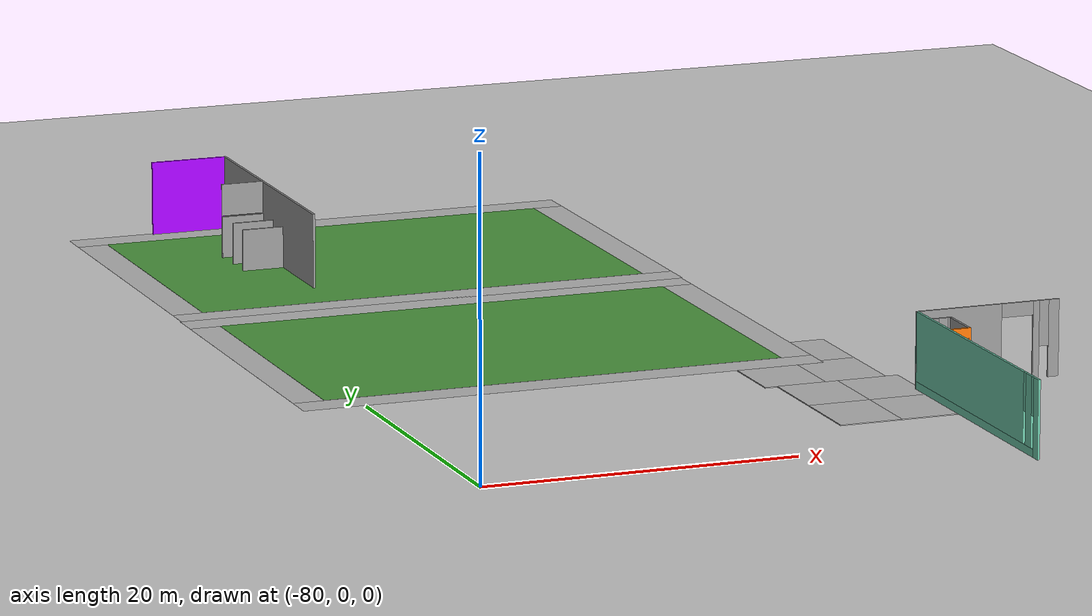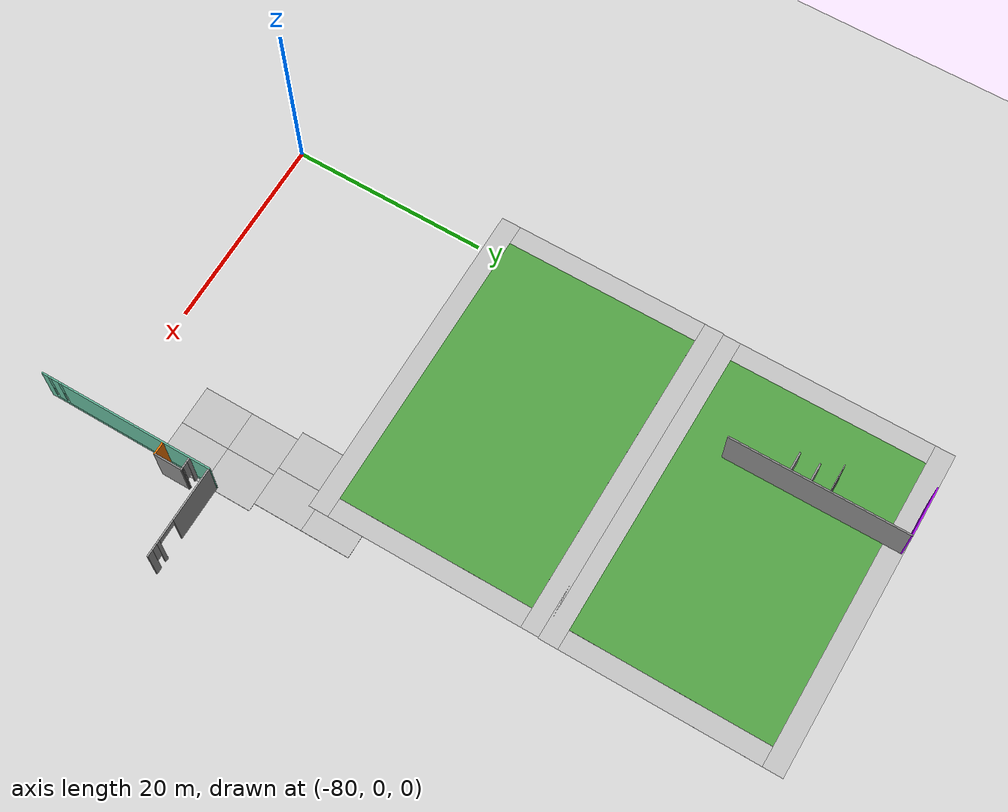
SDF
<sdf version="1.7">
 <world name="default">
  <model name="ground_plane">
   <static>1</static>
   <link name="link">
    <collision name="collision">
     <geometry><plane><normal>0 0 1</normal><size>100 100</size></plane></geometry>
     <surface><friction><ode><mu>100</mu><mu2>50</mu2></ode></friction></surface>
    </collision>
    <visual name="visual">
     <cast_shadows>0</cast_shadows>
     <geometry><plane><normal>0 0 1</normal><size>100 100</size></plane></geometry>
     <material>
      <script><uri>file://media/materials/scripts/gazebo.material</uri><name>Gazebo/Grey</name></script>
     </material>
    </visual>
   </link>
  </model>
  <model name="233333osrf_elevator">
   <link name="Wall_0">
    <pose>-7.17647 0.013004 0 0 -0 1.57174</pose>
    <visual name="Wall_0_Visual_1">
     <meta><layer>0</layer></meta>
     <pose>0.331828 0 0.25 0 -0 0</pose>
     <geometry><box><size>17.4519 0.15 0.5</size></box></geometry>
     <material>
      <script><uri>file://media/materials/scripts/gazebo.material</uri><name>Gazebo/Grey</name></script>
      <ambient>0.435294 0.796078 0.67451 1</ambient>
      <shader type="pixel"/>
     </material>
    </visual>
    <visual name="Wall_0_Visual_0">
     <meta><layer>0</layer></meta>
     <pose>-8.72596 0 2.4385 0 -0 0</pose>
     <geometry><box><size>0.663656 0.15 4.877</size></box></geometry>
     <material>
      <script><uri>file://media/materials/scripts/gazebo.material</uri><name>Gazebo/Grey</name></script>
      <ambient>0.435294 0.796078 0.67451 1</ambient>
      <shader type="pixel"/>
     </material>
    </visual>
    <visual name="Wall_0_Visual_2">
     <meta><layer>0</layer></meta>
     <pose>-7.67281 0 2.6885 0 -0 0</pose>
     <geometry><box><size>0.816657 0.15 4.377</size></box></geometry>
     <material>
      <script><uri>file://media/materials/scripts/gazebo.material</uri><name>Gazebo/Grey</name></script>
      <ambient>0.435294 0.796078 0.67451 1</ambient>
      <shader type="pixel"/>
     </material>
    </visual>
    <visual name="Wall_0_Visual_3">
     <meta><layer>0</layer></meta>
     <pose>1.05709 0 2.6885 0 -0 0</pose>
     <geometry><box><size>16.0014 0.15 4.377</size></box></geometry>
     <material>
      <script><uri>file://media/materials/scripts/gazebo.material</uri><name>Gazebo/Grey</name></script>
      <ambient>0.435294 0.796078 0.67451 1</ambient>
      <shader type="pixel"/>
     </material>
    </visual>
    <visual name="Wall_0_Visual_4">
     <meta><layer>0</layer></meta>
     <pose>-8.23763 0 3.6885 0 -0 0</pose>
     <geometry><box><size>0.313 0.15 2.377</size></box></geometry>
     <material>
      <script><uri>file://media/materials/scripts/gazebo.material</uri><name>Gazebo/Grey</name></script>
      <ambient>0.435294 0.796078 0.67451 1</ambient>
      <shader type="pixel"/>
     </material>
    </visual>
    <visual name="Wall_0_Visual_5">
     <meta><layer>0</layer></meta>
     <pose>-7.10405 0 3.6885 0 -0 0</pose>
     <geometry><box><size>0.320861 0.15 2.377</size></box></geometry>
     <material>
      <script><uri>file://media/materials/scripts/gazebo.material</uri><name>Gazebo/Grey</name></script>
      <ambient>0.435294 0.796078 0.67451 1</ambient>
      <shader type="pixel"/>
     </material>
    </visual>
    <collision name="Wall_0_Collision_0">
     <pose>-8.72596 0 2.4385 0 -0 0</pose>
     <geometry><box><size>0.663656 0.15 4.877</size></box></geometry>
     <surface>
      <friction>
       <ode><mu>1</mu><mu2>1</mu2><fdir1>0 0 0</fdir1><slip1>0</slip1><slip2>0</slip2></ode>
       <torsional>
        <coefficient>1</coefficient>
        <patch_radius>0</patch_radius>
        <surface_radius>0</surface_radius>
        <use_patch_radius>1</use_patch_radius>
        <ode><slip>0</slip></ode>
       </torsional>
      </friction>
      <bounce><restitution_coefficient>0</restitution_coefficient><threshold>1e+06</threshold></bounce>
      <contact>
       <collide_without_contact>0</collide_without_contact>
       <collide_without_contact_bitmask>1</collide_without_contact_bitmask>
       <collide_bitmask>1</collide_bitmask>
       <ode>
        <soft_cfm>0</soft_cfm>
        <soft_erp>0.2</soft_erp>
        <kp>1e+13</kp>
        <kd>1</kd>
        <max_vel>0.01</max_vel>
        <min_depth>0</min_depth>
       </ode>
       <bullet>
        <split_impulse>1</split_impulse>
        <split_impulse_penetration_threshold>-0.01</split_impulse_penetration_threshold>
        <soft_cfm>0</soft_cfm>
        <soft_erp>0.2</soft_erp>
        <kp>1e+13</kp>
        <kd>1</kd>
       </bullet>
      </contact>
     </surface>
    </collision>
    <collision name="Wall_0_Collision_5">
     <pose>-7.10405 0 3.6885 0 -0 0</pose>
     <geometry><box><size>0.320861 0.15 2.377</size></box></geometry>
     <surface>
      <friction>
       <ode><mu>1</mu><mu2>1</mu2><fdir1>0 0 0</fdir1><slip1>0</slip1><slip2>0</slip2></ode>
       <torsional>
        <coefficient>1</coefficient>
        <patch_radius>0</patch_radius>
        <surface_radius>0</surface_radius>
        <use_patch_radius>1</use_patch_radius>
        <ode><slip>0</slip></ode>
       </torsional>
      </friction>
      <bounce><restitution_coefficient>0</restitution_coefficient><threshold>1e+06</threshold></bounce>
      <contact>
       <collide_without_contact>0</collide_without_contact>
       <collide_without_contact_bitmask>1</collide_without_contact_bitmask>
       <collide_bitmask>1</collide_bitmask>
       <ode>
        <soft_cfm>0</soft_cfm>
        <soft_erp>0.2</soft_erp>
        <kp>1e+13</kp>
        <kd>1</kd>
        <max_vel>0.01</max_vel>
        <min_depth>0</min_depth>
       </ode>
       <bullet>
        <split_impulse>1</split_impulse>
        <split_impulse_penetration_threshold>-0.01</split_impulse_penetration_threshold>
        <soft_cfm>0</soft_cfm>
        <soft_erp>0.2</soft_erp>
        <kp>1e+13</kp>
        <kd>1</kd>
       </bullet>
      </contact>
     </surface>
    </collision>
    <collision name="Wall_0_Collision_1">
     <pose>0.331828 0 0.25 0 -0 0</pose>
     <geometry><box><size>17.4519 0.15 0.5</size></box></geometry>
     <surface>
      <friction>
       <ode><mu>1</mu><mu2>1</mu2><fdir1>0 0 0</fdir1><slip1>0</slip1><slip2>0</slip2></ode>
       <torsional>
        <coefficient>1</coefficient>
        <patch_radius>0</patch_radius>
        <surface_radius>0</surface_radius>
        <use_patch_radius>1</use_patch_radius>
        <ode><slip>0</slip></ode>
       </torsional>
      </friction>
      <bounce><restitution_coefficient>0</restitution_coefficient><threshold>1e+06</threshold></bounce>
      <contact>
       <collide_without_contact>0</collide_without_contact>
       <collide_without_contact_bitmask>1</collide_without_contact_bitmask>
       <collide_bitmask>1</collide_bitmask>
       <ode>
        <soft_cfm>0</soft_cfm>
        <soft_erp>0.2</soft_erp>
        <kp>1e+13</kp>
        <kd>1</kd>
        <max_vel>0.01</max_vel>
        <min_depth>0</min_depth>
       </ode>
       <bullet>
        <split_impulse>1</split_impulse>
        <split_impulse_penetration_threshold>-0.01</split_impulse_penetration_threshold>
        <soft_cfm>0</soft_cfm>
        <soft_erp>0.2</soft_erp>
        <kp>1e+13</kp>
        <kd>1</kd>
       </bullet>
      </contact>
     </surface>
    </collision>
    <collision name="Wall_0_Collision_2">
     <pose>-7.67281 0 2.6885 0 -0 0</pose>
     <geometry><box><size>0.816657 0.15 4.377</size></box></geometry>
     <surface>
      <friction>
       <ode><mu>1</mu><mu2>1</mu2><fdir1>0 0 0</fdir1><slip1>0</slip1><slip2>0</slip2></ode>
       <torsional>
        <coefficient>1</coefficient>
        <patch_radius>0</patch_radius>
        <surface_radius>0</surface_radius>
        <use_patch_radius>1</use_patch_radius>
        <ode><slip>0</slip></ode>
       </torsional>
      </friction>
      <bounce><restitution_coefficient>0</restitution_coefficient><threshold>1e+06</threshold></bounce>
      <contact>
       <collide_without_contact>0</collide_without_contact>
       <collide_without_contact_bitmask>1</collide_without_contact_bitmask>
       <collide_bitmask>1</collide_bitmask>
       <ode>
        <soft_cfm>0</soft_cfm>
        <soft_erp>0.2</soft_erp>
        <kp>1e+13</kp>
        <kd>1</kd>
        <max_vel>0.01</max_vel>
        <min_depth>0</min_depth>
       </ode>
       <bullet>
        <split_impulse>1</split_impulse>
        <split_impulse_penetration_threshold>-0.01</split_impulse_penetration_threshold>
        <soft_cfm>0</soft_cfm>
        <soft_erp>0.2</soft_erp>
        <kp>1e+13</kp>
        <kd>1</kd>
       </bullet>
      </contact>
     </surface>
    </collision>
    <collision name="Wall_0_Collision_3">
     <pose>1.05709 0 2.6885 0 -0 0</pose>
     <geometry><box><size>16.0014 0.15 4.377</size></box></geometry>
     <surface>
      <friction>
       <ode><mu>1</mu><mu2>1</mu2><fdir1>0 0 0</fdir1><slip1>0</slip1><slip2>0</slip2></ode>
       <torsional>
        <coefficient>1</coefficient>
        <patch_radius>0</patch_radius>
        <surface_radius>0</surface_radius>
        <use_patch_radius>1</use_patch_radius>
        <ode><slip>0</slip></ode>
       </torsional>
      </friction>
      <bounce><restitution_coefficient>0</restitution_coefficient><threshold>1e+06</threshold></bounce>
      <contact>
       <collide_without_contact>0</collide_without_contact>
       <collide_without_contact_bitmask>1</collide_without_contact_bitmask>
       <collide_bitmask>1</collide_bitmask>
       <ode>
        <soft_cfm>0</soft_cfm>
        <soft_erp>0.2</soft_erp>
        <kp>1e+13</kp>
        <kd>1</kd>
        <max_vel>0.01</max_vel>
        <min_depth>0</min_depth>
       </ode>
       <bullet>
        <split_impulse>1</split_impulse>
        <split_impulse_penetration_threshold>-0.01</split_impulse_penetration_threshold>
        <soft_cfm>0</soft_cfm>
        <soft_erp>0.2</soft_erp>
        <kp>1e+13</kp>
        <kd>1</kd>
       </bullet>
      </contact>
     </surface>
    </collision>
    <collision name="Wall_0_Collision_4">
     <pose>-8.23763 0 3.6885 0 -0 0</pose>
     <geometry><box><size>0.313 0.15 2.377</size></box></geometry>
     <surface>
      <friction>
       <ode><mu>1</mu><mu2>1</mu2><fdir1>0 0 0</fdir1><slip1>0</slip1><slip2>0</slip2></ode>
       <torsional>
        <coefficient>1</coefficient>
        <patch_radius>0</patch_radius>
        <surface_radius>0</surface_radius>
        <use_patch_radius>1</use_patch_radius>
        <ode><slip>0</slip></ode>
       </torsional>
      </friction>
      <bounce><restitution_coefficient>0</restitution_coefficient><threshold>1e+06</threshold></bounce>
      <contact>
       <collide_without_contact>0</collide_without_contact>
       <collide_without_contact_bitmask>1</collide_without_contact_bitmask>
       <collide_bitmask>1</collide_bitmask>
       <ode>
        <soft_cfm>0</soft_cfm>
        <soft_erp>0.2</soft_erp>
        <kp>1e+13</kp>
        <kd>1</kd>
        <max_vel>0.01</max_vel>
        <min_depth>0</min_depth>
       </ode>
       <bullet>
        <split_impulse>1</split_impulse>
        <split_impulse_penetration_threshold>-0.01</split_impulse_penetration_threshold>
        <soft_cfm>0</soft_cfm>
        <soft_erp>0.2</soft_erp>
        <kp>1e+13</kp>
        <kd>1</kd>
       </bullet>
      </contact>
     </surface>
    </collision>
   </link>
   <link name="Wall_29">
    <pose>-6.49697 4.1045 0 0 -0 0</pose>
    <visual name="Wall_29_Visual">
     <meta><layer>0</layer></meta>
     <pose>0 0 2.4385 0 -0 0</pose>
     <geometry><box><size>1.39187 0.15 4.877</size></box></geometry>
     <material>
      <script><uri>file://media/materials/scripts/gazebo.material</uri><name>Gazebo/Grey</name></script>
      <ambient>0.996078 0.47451 0.0196078 1</ambient>
      <shader type="pixel"/>
     </material>
    </visual>
    <collision name="Wall_29_Collision">
     <pose>0 0 2.4385 0 -0 0</pose>
     <geometry><box><size>1.39187 0.15 4.877</size></box></geometry>
     <surface>
      <friction>
       <ode><mu>1</mu><mu2>1</mu2><fdir1>0 0 0</fdir1><slip1>0</slip1><slip2>0</slip2></ode>
       <torsional>
        <coefficient>1</coefficient>
        <patch_radius>0</patch_radius>
        <surface_radius>0</surface_radius>
        <use_patch_radius>1</use_patch_radius>
        <ode><slip>0</slip></ode>
       </torsional>
      </friction>
      <bounce><restitution_coefficient>0</restitution_coefficient><threshold>1e+06</threshold></bounce>
      <contact>
       <collide_without_contact>0</collide_without_contact>
       <collide_without_contact_bitmask>1</collide_without_contact_bitmask>
       <collide_bitmask>1</collide_bitmask>
       <ode>
        <soft_cfm>0</soft_cfm>
        <soft_erp>0.2</soft_erp>
        <kp>1e+13</kp>
        <kd>1</kd>
        <max_vel>0.01</max_vel>
        <min_depth>0</min_depth>
       </ode>
       <bullet>
        <split_impulse>1</split_impulse>
        <split_impulse_penetration_threshold>-0.01</split_impulse_penetration_threshold>
        <soft_cfm>0</soft_cfm>
        <soft_erp>0.2</soft_erp>
        <kp>1e+13</kp>
        <kd>1</kd>
       </bullet>
      </contact>
     </surface>
    </collision>
   </link>
   <link name="Wall_30">
    <pose>-5.87597 5.5295 0 0 -0 1.5708</pose>
    <visual name="Wall_30_Visual">
     <meta><layer>0</layer></meta>
     <pose>0 0 2.4385 0 -0 0</pose>
     <geometry><box><size>3 0.15 4.877</size></box></geometry>
     <material>
      <script><uri>file://media/materials/scripts/gazebo.material</uri><name>Gazebo/Grey</name></script>
      <ambient>1 1 1 1</ambient>
      <shader type="pixel"/>
     </material>
    </visual>
    <collision name="Wall_30_Collision">
     <pose>0 0 2.4385 0 -0 0</pose>
     <geometry><box><size>3 0.15 4.877</size></box></geometry>
     <surface>
      <friction>
       <ode><mu>1</mu><mu2>1</mu2><fdir1>0 0 0</fdir1><slip1>0</slip1><slip2>0</slip2></ode>
       <torsional>
        <coefficient>1</coefficient>
        <patch_radius>0</patch_radius>
        <surface_radius>0</surface_radius>
        <use_patch_radius>1</use_patch_radius>
        <ode><slip>0</slip></ode>
       </torsional>
      </friction>
      <bounce><restitution_coefficient>0</restitution_coefficient><threshold>1e+06</threshold></bounce>
      <contact>
       <collide_without_contact>0</collide_without_contact>
       <collide_without_contact_bitmask>1</collide_without_contact_bitmask>
       <collide_bitmask>1</collide_bitmask>
       <ode>
        <soft_cfm>0</soft_cfm>
        <soft_erp>0.2</soft_erp>
        <kp>1e+13</kp>
        <kd>1</kd>
        <max_vel>0.01</max_vel>
        <min_depth>0</min_depth>
       </ode>
       <bullet>
        <split_impulse>1</split_impulse>
        <split_impulse_penetration_threshold>-0.01</split_impulse_penetration_threshold>
        <soft_cfm>0</soft_cfm>
        <soft_erp>0.2</soft_erp>
        <kp>1e+13</kp>
        <kd>1</kd>
       </bullet>
      </contact>
     </surface>
    </collision>
   </link>
   <link name="Wall_31">
    <pose>-6.50397 6.9525 0 0 0 -3.13841</pose>
    <visual name="Wall_31_Visual_0">
     <meta><layer>0</layer></meta>
     <pose>-0.567544 0 2.4385 0 -0 0</pose>
     <geometry><box><size>0.271575 0.15 4.877</size></box></geometry>
     <material>
      <script><uri>file://media/materials/scripts/gazebo.material</uri><name>Gazebo/Grey</name></script>
      <ambient>1 1 1 1</ambient>
      <shader type="pixel"/>
     </material>
    </visual>
    <visual name="Wall_31_Visual_1">
     <meta><layer>0</layer></meta>
     <pose>0.441678 0 2.4385 0 -0 0</pose>
     <geometry><box><size>0.523307 0.15 4.877</size></box></geometry>
     <material>
      <script><uri>file://media/materials/scripts/gazebo.material</uri><name>Gazebo/Grey</name></script>
      <ambient>1 1 1 1</ambient>
      <shader type="pixel"/>
     </material>
    </visual>
    <visual name="Wall_31_Visual_3">
     <meta><layer>0</layer></meta>
     <pose>-0.125866 0 3.4385 0 -0 0</pose>
     <geometry><box><size>0.611781 0.15 2.877</size></box></geometry>
     <material>
      <script><uri>file://media/materials/scripts/gazebo.material</uri><name>Gazebo/Grey</name></script>
      <ambient>1 1 1 1</ambient>
      <shader type="pixel"/>
     </material>
    </visual>
    <collision name="Wall_31_Collision_0">
     <pose>-0.567544 0 2.4385 0 -0 0</pose>
     <geometry><box><size>0.271575 0.15 4.877</size></box></geometry>
     <surface>
      <friction>
       <ode><mu>1</mu><mu2>1</mu2><fdir1>0 0 0</fdir1><slip1>0</slip1><slip2>0</slip2></ode>
       <torsional>
        <coefficient>1</coefficient>
        <patch_radius>0</patch_radius>
        <surface_radius>0</surface_radius>
        <use_patch_radius>1</use_patch_radius>
        <ode><slip>0</slip></ode>
       </torsional>
      </friction>
      <bounce><restitution_coefficient>0</restitution_coefficient><threshold>1e+06</threshold></bounce>
      <contact>
       <collide_without_contact>0</collide_without_contact>
       <collide_without_contact_bitmask>1</collide_without_contact_bitmask>
       <collide_bitmask>1</collide_bitmask>
       <ode>
        <soft_cfm>0</soft_cfm>
        <soft_erp>0.2</soft_erp>
        <kp>1e+13</kp>
        <kd>1</kd>
        <max_vel>0.01</max_vel>
        <min_depth>0</min_depth>
       </ode>
       <bullet>
        <split_impulse>1</split_impulse>
        <split_impulse_penetration_threshold>-0.01</split_impulse_penetration_threshold>
        <soft_cfm>0</soft_cfm>
        <soft_erp>0.2</soft_erp>
        <kp>1e+13</kp>
        <kd>1</kd>
       </bullet>
      </contact>
     </surface>
    </collision>
    <collision name="Wall_31_Collision_1">
     <pose>0.441678 0 2.4385 0 -0 0</pose>
     <geometry><box><size>0.523307 0.15 4.877</size></box></geometry>
     <surface>
      <friction>
       <ode><mu>1</mu><mu2>1</mu2><fdir1>0 0 0</fdir1><slip1>0</slip1><slip2>0</slip2></ode>
       <torsional>
        <coefficient>1</coefficient>
        <patch_radius>0</patch_radius>
        <surface_radius>0</surface_radius>
        <use_patch_radius>1</use_patch_radius>
        <ode><slip>0</slip></ode>
       </torsional>
      </friction>
      <bounce><restitution_coefficient>0</restitution_coefficient><threshold>1e+06</threshold></bounce>
      <contact>
       <collide_without_contact>0</collide_without_contact>
       <collide_without_contact_bitmask>1</collide_without_contact_bitmask>
       <collide_bitmask>1</collide_bitmask>
       <ode>
        <soft_cfm>0</soft_cfm>
        <soft_erp>0.2</soft_erp>
        <kp>1e+13</kp>
        <kd>1</kd>
        <max_vel>0.01</max_vel>
        <min_depth>0</min_depth>
       </ode>
       <bullet>
        <split_impulse>1</split_impulse>
        <split_impulse_penetration_threshold>-0.01</split_impulse_penetration_threshold>
        <soft_cfm>0</soft_cfm>
        <soft_erp>0.2</soft_erp>
        <kp>1e+13</kp>
        <kd>1</kd>
       </bullet>
      </contact>
     </surface>
    </collision>
    <collision name="Wall_31_Collision_3">
     <pose>-0.125866 0 3.4385 0 -0 0</pose>
     <geometry><box><size>0.611781 0.15 2.877</size></box></geometry>
     <surface>
      <friction>
       <ode><mu>1</mu><mu2>1</mu2><fdir1>0 0 0</fdir1><slip1>0</slip1><slip2>0</slip2></ode>
       <torsional>
        <coefficient>1</coefficient>
        <patch_radius>0</patch_radius>
        <surface_radius>0</surface_radius>
        <use_patch_radius>1</use_patch_radius>
        <ode><slip>0</slip></ode>
       </torsional>
      </friction>
      <bounce><restitution_coefficient>0</restitution_coefficient><threshold>1e+06</threshold></bounce>
      <contact>
       <collide_without_contact>0</collide_without_contact>
       <collide_without_contact_bitmask>1</collide_without_contact_bitmask>
       <collide_bitmask>1</collide_bitmask>
       <ode>
        <soft_cfm>0</soft_cfm>
        <soft_erp>0.2</soft_erp>
        <kp>1e+13</kp>
        <kd>1</kd>
        <max_vel>0.01</max_vel>
        <min_depth>0</min_depth>
       </ode>
       <bullet>
        <split_impulse>1</split_impulse>
        <split_impulse_penetration_threshold>-0.01</split_impulse_penetration_threshold>
        <soft_cfm>0</soft_cfm>
        <soft_erp>0.2</soft_erp>
        <kp>1e+13</kp>
        <kd>1</kd>
       </bullet>
      </contact>
     </surface>
    </collision>
   </link>
   <link name="Wall_35">
    <pose>-2.50997 8.9955 0 0 -0 0</pose>
    <visual name="Wall_35_Visual_0">
     <meta><layer>0</layer></meta>
     <pose>-1.92197 0 2.4385 0 -0 0</pose>
     <geometry><box><size>5.65606 0.15 4.877</size></box></geometry>
     <material>
      <script><uri>file://media/materials/scripts/gazebo.material</uri><name>Gazebo/Grey</name></script>
      <ambient>1 1 1 1</ambient>
      <shader type="pixel"/>
     </material>
    </visual>
    <visual name="Wall_35_Visual_1">
     <meta><layer>0</layer></meta>
     <pose>3.22541 0 2.4385 0 -0 0</pose>
     <geometry><box><size>0.406701 0.15 4.877</size></box></geometry>
     <material>
      <script><uri>file://media/materials/scripts/gazebo.material</uri><name>Gazebo/Grey</name></script>
      <ambient>1 1 1 1</ambient>
      <shader type="pixel"/>
     </material>
    </visual>
    <visual name="Wall_35_Visual_2">
     <meta><layer>0</layer></meta>
     <pose>4.40208 0 2.4385 0 -0 0</pose>
     <geometry><box><size>0.695843 0.15 4.877</size></box></geometry>
     <material>
      <script><uri>file://media/materials/scripts/gazebo.material</uri><name>Gazebo/Grey</name></script>
      <ambient>1 1 1 1</ambient>
      <shader type="pixel"/>
     </material>
    </visual>
    <visual name="Wall_35_Visual_5">
     <meta><layer>0</layer></meta>
     <pose>3.74146 0 3.4385 0 -0 0</pose>
     <geometry><box><size>0.625391 0.15 2.877</size></box></geometry>
     <material>
      <script><uri>file://media/materials/scripts/gazebo.material</uri><name>Gazebo/Grey</name></script>
      <ambient>1 1 1 1</ambient>
      <shader type="pixel"/>
     </material>
    </visual>
    <visual name="Wall_35_Visual_6">
     <meta><layer>0</layer></meta>
     <pose>1.96406 0 4.4385 0 -0 0</pose>
     <geometry><box><size>2.116 0.15 0.877</size></box></geometry>
     <material>
      <script><uri>file://media/materials/scripts/gazebo.material</uri><name>Gazebo/Grey</name></script>
      <ambient>1 1 1 1</ambient>
      <shader type="pixel"/>
     </material>
    </visual>
    <collision name="Wall_35_Collision_0">
     <pose>-1.92197 0 2.4385 0 -0 0</pose>
     <geometry><box><size>5.65606 0.15 4.877</size></box></geometry>
     <surface>
      <friction>
       <ode><mu>1</mu><mu2>1</mu2><fdir1>0 0 0</fdir1><slip1>0</slip1><slip2>0</slip2></ode>
       <torsional>
        <coefficient>1</coefficient>
        <patch_radius>0</patch_radius>
        <surface_radius>0</surface_radius>
        <use_patch_radius>1</use_patch_radius>
        <ode><slip>0</slip></ode>
       </torsional>
      </friction>
      <bounce><restitution_coefficient>0</restitution_coefficient><threshold>1e+06</threshold></bounce>
      <contact>
       <collide_without_contact>0</collide_without_contact>
       <collide_without_contact_bitmask>1</collide_without_contact_bitmask>
       <collide_bitmask>1</collide_bitmask>
       <ode>
        <soft_cfm>0</soft_cfm>
        <soft_erp>0.2</soft_erp>
        <kp>1e+13</kp>
        <kd>1</kd>
        <max_vel>0.01</max_vel>
        <min_depth>0</min_depth>
       </ode>
       <bullet>
        <split_impulse>1</split_impulse>
        <split_impulse_penetration_threshold>-0.01</split_impulse_penetration_threshold>
        <soft_cfm>0</soft_cfm>
        <soft_erp>0.2</soft_erp>
        <kp>1e+13</kp>
        <kd>1</kd>
       </bullet>
      </contact>
     </surface>
    </collision>
    <collision name="Wall_35_Collision_1">
     <pose>3.22541 0 2.4385 0 -0 0</pose>
     <geometry><box><size>0.406701 0.15 4.877</size></box></geometry>
     <surface>
      <friction>
       <ode><mu>1</mu><mu2>1</mu2><fdir1>0 0 0</fdir1><slip1>0</slip1><slip2>0</slip2></ode>
       <torsional>
        <coefficient>1</coefficient>
        <patch_radius>0</patch_radius>
        <surface_radius>0</surface_radius>
        <use_patch_radius>1</use_patch_radius>
        <ode><slip>0</slip></ode>
       </torsional>
      </friction>
      <bounce><restitution_coefficient>0</restitution_coefficient><threshold>1e+06</threshold></bounce>
      <contact>
       <collide_without_contact>0</collide_without_contact>
       <collide_without_contact_bitmask>1</collide_without_contact_bitmask>
       <collide_bitmask>1</collide_bitmask>
       <ode>
        <soft_cfm>0</soft_cfm>
        <soft_erp>0.2</soft_erp>
        <kp>1e+13</kp>
        <kd>1</kd>
        <max_vel>0.01</max_vel>
        <min_depth>0</min_depth>
       </ode>
       <bullet>
        <split_impulse>1</split_impulse>
        <split_impulse_penetration_threshold>-0.01</split_impulse_penetration_threshold>
        <soft_cfm>0</soft_cfm>
        <soft_erp>0.2</soft_erp>
        <kp>1e+13</kp>
        <kd>1</kd>
       </bullet>
      </contact>
     </surface>
    </collision>
    <collision name="Wall_35_Collision_2">
     <pose>4.40208 0 2.4385 0 -0 0</pose>
     <geometry><box><size>0.695843 0.15 4.877</size></box></geometry>
     <surface>
      <friction>
       <ode><mu>1</mu><mu2>1</mu2><fdir1>0 0 0</fdir1><slip1>0</slip1><slip2>0</slip2></ode>
       <torsional>
        <coefficient>1</coefficient>
        <patch_radius>0</patch_radius>
        <surface_radius>0</surface_radius>
        <use_patch_radius>1</use_patch_radius>
        <ode><slip>0</slip></ode>
       </torsional>
      </friction>
      <bounce><restitution_coefficient>0</restitution_coefficient><threshold>1e+06</threshold></bounce>
      <contact>
       <collide_without_contact>0</collide_without_contact>
       <collide_without_contact_bitmask>1</collide_without_contact_bitmask>
       <collide_bitmask>1</collide_bitmask>
       <ode>
        <soft_cfm>0</soft_cfm>
        <soft_erp>0.2</soft_erp>
        <kp>1e+13</kp>
        <kd>1</kd>
        <max_vel>0.01</max_vel>
        <min_depth>0</min_depth>
       </ode>
       <bullet>
        <split_impulse>1</split_impulse>
        <split_impulse_penetration_threshold>-0.01</split_impulse_penetration_threshold>
        <soft_cfm>0</soft_cfm>
        <soft_erp>0.2</soft_erp>
        <kp>1e+13</kp>
        <kd>1</kd>
       </bullet>
      </contact>
     </surface>
    </collision>
    <collision name="Wall_35_Collision_5">
     <pose>3.74146 0 3.4385 0 -0 0</pose>
     <geometry><box><size>0.625391 0.15 2.877</size></box></geometry>
     <surface>
      <friction>
       <ode><mu>1</mu><mu2>1</mu2><fdir1>0 0 0</fdir1><slip1>0</slip1><slip2>0</slip2></ode>
       <torsional>
        <coefficient>1</coefficient>
        <patch_radius>0</patch_radius>
        <surface_radius>0</surface_radius>
        <use_patch_radius>1</use_patch_radius>
        <ode><slip>0</slip></ode>
       </torsional>
      </friction>
      <bounce><restitution_coefficient>0</restitution_coefficient><threshold>1e+06</threshold></bounce>
      <contact>
       <collide_without_contact>0</collide_without_contact>
       <collide_without_contact_bitmask>1</collide_without_contact_bitmask>
       <collide_bitmask>1</collide_bitmask>
       <ode>
        <soft_cfm>0</soft_cfm>
        <soft_erp>0.2</soft_erp>
        <kp>1e+13</kp>
        <kd>1</kd>
        <max_vel>0.01</max_vel>
        <min_depth>0</min_depth>
       </ode>
       <bullet>
        <split_impulse>1</split_impulse>
        <split_impulse_penetration_threshold>-0.01</split_impulse_penetration_threshold>
        <soft_cfm>0</soft_cfm>
        <soft_erp>0.2</soft_erp>
        <kp>1e+13</kp>
        <kd>1</kd>
       </bullet>
      </contact>
     </surface>
    </collision>
    <collision name="Wall_35_Collision_6">
     <pose>1.96406 0 4.4385 0 -0 0</pose>
     <geometry><box><size>2.116 0.15 0.877</size></box></geometry>
     <surface>
      <friction>
       <ode><mu>1</mu><mu2>1</mu2><fdir1>0 0 0</fdir1><slip1>0</slip1><slip2>0</slip2></ode>
       <torsional>
        <coefficient>1</coefficient>
        <patch_radius>0</patch_radius>
        <surface_radius>0</surface_radius>
        <use_patch_radius>1</use_patch_radius>
        <ode><slip>0</slip></ode>
       </torsional>
      </friction>
      <bounce><restitution_coefficient>0</restitution_coefficient><threshold>1e+06</threshold></bounce>
      <contact>
       <collide_without_contact>0</collide_without_contact>
       <collide_without_contact_bitmask>1</collide_without_contact_bitmask>
       <collide_bitmask>1</collide_bitmask>
       <ode>
        <soft_cfm>0</soft_cfm>
        <soft_erp>0.2</soft_erp>
        <kp>1e+13</kp>
        <kd>1</kd>
        <max_vel>0.01</max_vel>
        <min_depth>0</min_depth>
       </ode>
       <bullet>
        <split_impulse>1</split_impulse>
        <split_impulse_penetration_threshold>-0.01</split_impulse_penetration_threshold>
        <soft_cfm>0</soft_cfm>
        <soft_erp>0.2</soft_erp>
        <kp>1e+13</kp>
        <kd>1</kd>
       </bullet>
      </contact>
     </surface>
    </collision>
   </link>
   <static>1</static>
   <pose>-39.9417 3.24072 0 0 -0 0</pose>
  </model>
  <model name="mud_box1111_1">
   <link name="link">
    <pose>0 0 -0.129582 0 -0 0</pose>
    <visual name="visual_1">
     <pose>-2 2.5 0 0 -0 0</pose>
     <cast_shadows>0</cast_shadows>
     <geometry><box><size>4 5 0.2</size></box></geometry>
     <material>
      <script>
       <uri>model://mud_box/materials/scripts</uri>
       <uri>model://mud_box/materials/textures</uri>
       <name>vrc/mud</name>
      </script>
      <shader type="pixel"/>
     </material>
    </visual>
    <visual name="visual_4">
     <pose>-2 -2.5 0 0 -0 0</pose>
     <cast_shadows>0</cast_shadows>
     <geometry><box><size>4 5 0.2</size></box></geometry>
     <material>
      <script>
       <uri>model://mud_box/materials/scripts</uri>
       <uri>model://mud_box/materials/textures</uri>
       <name>vrc/mud</name>
      </script>
      <shader type="pixel"/>
     </material>
    </visual>
    <visual name="visual_3">
     <pose>2 -2.5 0 0 -0 0</pose>
     <cast_shadows>0</cast_shadows>
     <geometry><box><size>4 5 0.2</size></box></geometry>
     <material>
      <script>
       <uri>model://mud_box/materials/scripts</uri>
       <uri>model://mud_box/materials/textures</uri>
       <name>vrc/mud</name>
      </script>
      <shader type="pixel"/>
     </material>
    </visual>
    <visual name="visual_2">
     <pose>2 2.5 0 0 -0 0</pose>
     <cast_shadows>0</cast_shadows>
     <geometry><box><size>4 5 0.2</size></box></geometry>
     <material>
      <script>
       <uri>model://mud_box/materials/scripts</uri>
       <uri>model://mud_box/materials/textures</uri>
       <name>vrc/mud</name>
      </script>
      <shader type="pixel"/>
     </material>
    </visual>
    <collision name="collision">
     <geometry><box><size>8 10 0.2</size></box></geometry>
     <surface>
      <friction>
       <ode><mu>1</mu><mu2>1</mu2><fdir1>0 0 0</fdir1><slip1>0</slip1><slip2>0</slip2></ode>
       <torsional>
        <coefficient>1</coefficient>
        <patch_radius>0</patch_radius>
        <surface_radius>0</surface_radius>
        <use_patch_radius>1</use_patch_radius>
        <ode><slip>0</slip></ode>
       </torsional>
      </friction>
      <bounce><restitution_coefficient>0</restitution_coefficient><threshold>1e+06</threshold></bounce>
      <contact>
       <collide_without_contact>0</collide_without_contact>
       <collide_without_contact_bitmask>1</collide_without_contact_bitmask>
       <collide_bitmask>1</collide_bitmask>
       <ode>
        <soft_cfm>0</soft_cfm>
        <soft_erp>0.2</soft_erp>
        <kp>1e+13</kp>
        <kd>1</kd>
        <max_vel>0.01</max_vel>
        <min_depth>0</min_depth>
       </ode>
       <bullet>
        <split_impulse>1</split_impulse>
        <split_impulse_penetration_threshold>-0.01</split_impulse_penetration_threshold>
        <soft_cfm>0</soft_cfm>
        <soft_erp>0.2</soft_erp>
        <kp>1e+13</kp>
        <kd>1</kd>
       </bullet>
      </contact>
     </surface>
    </collision>
   </link>
   <static>1</static>
   <pose>-50.7871 10.9659 0 0 -0 0</pose>
  </model>
  <model name="mud_box1111_2">
   <link name="link">
    <pose>0 0 -0.129582 0 -0 0</pose>
    <visual name="visual_1">
     <pose>-2 2.5 0 0 -0 0</pose>
     <cast_shadows>0</cast_shadows>
     <geometry><box><size>4 5 0.2</size></box></geometry>
     <material>
      <script>
       <uri>model://mud_box/materials/scripts</uri>
       <uri>model://mud_box/materials/textures</uri>
       <name>vrc/mud</name>
      </script>
      <shader type="pixel"/>
     </material>
    </visual>
    <visual name="visual_4">
     <pose>-2 -2.5 0 0 -0 0</pose>
     <cast_shadows>0</cast_shadows>
     <geometry><box><size>4 5 0.2</size></box></geometry>
     <material>
      <script>
       <uri>model://mud_box/materials/scripts</uri>
       <uri>model://mud_box/materials/textures</uri>
       <name>vrc/mud</name>
      </script>
      <shader type="pixel"/>
     </material>
    </visual>
    <visual name="visual_3">
     <pose>2 -2.5 0 0 -0 0</pose>
     <cast_shadows>0</cast_shadows>
     <geometry><box><size>4 5 0.2</size></box></geometry>
     <material>
      <script>
       <uri>model://mud_box/materials/scripts</uri>
       <uri>model://mud_box/materials/textures</uri>
       <name>vrc/mud</name>
      </script>
      <shader type="pixel"/>
     </material>
    </visual>
    <visual name="visual_2">
     <pose>2 2.5 0 0 -0 0</pose>
     <cast_shadows>0</cast_shadows>
     <geometry><box><size>4 5 0.2</size></box></geometry>
     <material>
      <script>
       <uri>model://mud_box/materials/scripts</uri>
       <uri>model://mud_box/materials/textures</uri>
       <name>vrc/mud</name>
      </script>
      <shader type="pixel"/>
     </material>
    </visual>
    <collision name="collision">
     <geometry><box><size>8 10 0.2</size></box></geometry>
     <surface>
      <friction>
       <ode><mu>1</mu><mu2>1</mu2><fdir1>0 0 0</fdir1><slip1>0</slip1><slip2>0</slip2></ode>
       <torsional>
        <coefficient>1</coefficient>
        <patch_radius>0</patch_radius>
        <surface_radius>0</surface_radius>
        <use_patch_radius>1</use_patch_radius>
        <ode><slip>0</slip></ode>
       </torsional>
      </friction>
      <bounce><restitution_coefficient>0</restitution_coefficient><threshold>1e+06</threshold></bounce>
      <contact>
       <collide_without_contact>0</collide_without_contact>
       <collide_without_contact_bitmask>1</collide_without_contact_bitmask>
       <collide_bitmask>1</collide_bitmask>
       <ode>
        <soft_cfm>0</soft_cfm>
        <soft_erp>0.2</soft_erp>
        <kp>1e+13</kp>
        <kd>1</kd>
        <max_vel>0.01</max_vel>
        <min_depth>0</min_depth>
       </ode>
       <bullet>
        <split_impulse>1</split_impulse>
        <split_impulse_penetration_threshold>-0.01</split_impulse_penetration_threshold>
        <soft_cfm>0</soft_cfm>
        <soft_erp>0.2</soft_erp>
        <kp>1e+13</kp>
        <kd>1</kd>
       </bullet>
      </contact>
     </surface>
    </collision>
   </link>
   <static>1</static>
   <pose>-51.5871 20.9602 0 0 -0 0</pose>
  </model>
  <model name="robocup_3d_field">
   <static>1</static>
   <link name="field">
    <pose>0 0 0.01 0 -0 0</pose>
    <collision name="collision">
     <geometry><plane><normal>0 0 1</normal><size>30 20</size></plane></geometry>
     <surface><friction><ode><mu>100</mu><mu2>50</mu2></ode></friction></surface>
    </collision>
    <visual name="base1">
     <pose>0 11 0.001 0 -0 0</pose>
     <cast_shadows>0</cast_shadows>
     <geometry><plane><normal>0 0 1</normal><size>34 2</size></plane></geometry>
     <material>
      <script>
       <uri>model://robocup_3Dsim_field/materials/scripts/</uri>
       <uri>model://robocup_3Dsim_field/materials/textures/</uri>
       <name>RoboCup/FieldBorder</name>
      </script>
     </material>
    </visual>
    <visual name="base2">
     <pose>0 -11 0.001 0 -0 0</pose>
     <cast_shadows>0</cast_shadows>
     <geometry><plane><normal>0 0 1</normal><size>34 2</size></plane></geometry>
     <material>
      <script>
       <uri>model://robocup_3Dsim_field/materials/scripts/</uri>
       <uri>model://robocup_3Dsim_field/materials/textures/</uri>
       <name>RoboCup/FieldBorder</name>
      </script>
     </material>
    </visual>
    <visual name="base3">
     <pose>16 0 0.001 0 -0 0</pose>
     <cast_shadows>0</cast_shadows>
     <geometry><plane><normal>0 0 1</normal><size>2 20</size></plane></geometry>
     <material>
      <script>
       <uri>model://robocup_3Dsim_field/materials/scripts/</uri>
       <uri>model://robocup_3Dsim_field/materials/textures/</uri>
       <name>RoboCup/FieldBorder</name>
      </script>
     </material>
    </visual>
    <visual name="base4">
     <pose>-16 0 0.001 0 -0 0</pose>
     <cast_shadows>0</cast_shadows>
     <geometry><plane><normal>0 0 1</normal><size>2 20</size></plane></geometry>
     <material>
      <script>
       <uri>model://robocup_3Dsim_field/materials/scripts/</uri>
       <uri>model://robocup_3Dsim_field/materials/textures/</uri>
       <name>RoboCup/FieldBorder</name>
      </script>
     </material>
    </visual>
    <visual name="carpet">
     <cast_shadows>0</cast_shadows>
     <geometry><plane><normal>0 0 1</normal><size>30 20</size></plane></geometry>
     <material>
      <script>
       <uri>model://robocup_3Dsim_field/materials/scripts/</uri>
       <uri>model://robocup_3Dsim_field/materials/textures/</uri>
       <name>RoboCup/Grass</name>
      </script>
     </material>
    </visual>
   </link>
   <pose>-66.9079 32.3065 0 0 -0 0</pose>
  </model>
  <model name="robocup_3d_field_0">
   <static>1</static>
   <link name="field">
    <pose>0 0 0.01 0 -0 0</pose>
    <collision name="collision">
     <geometry><plane><normal>0 0 1</normal><size>30 20</size></plane></geometry>
     <surface><friction><ode><mu>100</mu><mu2>50</mu2></ode></friction></surface>
    </collision>
    <visual name="base1">
     <pose>0 11 0.001 0 -0 0</pose>
     <cast_shadows>0</cast_shadows>
     <geometry><plane><normal>0 0 1</normal><size>34 2</size></plane></geometry>
     <material>
      <script>
       <uri>model://robocup_3Dsim_field/materials/scripts/</uri>
       <uri>model://robocup_3Dsim_field/materials/textures/</uri>
       <name>RoboCup/FieldBorder</name>
      </script>
     </material>
    </visual>
    <visual name="base2">
     <pose>0 -11 0.001 0 -0 0</pose>
     <cast_shadows>0</cast_shadows>
     <geometry><plane><normal>0 0 1</normal><size>34 2</size></plane></geometry>
     <material>
      <script>
       <uri>model://robocup_3Dsim_field/materials/scripts/</uri>
       <uri>model://robocup_3Dsim_field/materials/textures/</uri>
       <name>RoboCup/FieldBorder</name>
      </script>
     </material>
    </visual>
    <visual name="base3">
     <pose>16 0 0.001 0 -0 0</pose>
     <cast_shadows>0</cast_shadows>
     <geometry><plane><normal>0 0 1</normal><size>2 20</size></plane></geometry>
     <material>
      <script>
       <uri>model://robocup_3Dsim_field/materials/scripts/</uri>
       <uri>model://robocup_3Dsim_field/materials/textures/</uri>
       <name>RoboCup/FieldBorder</name>
      </script>
     </material>
    </visual>
    <visual name="base4">
     <pose>-16 0 0.001 0 -0 0</pose>
     <cast_shadows>0</cast_shadows>
     <geometry><plane><normal>0 0 1</normal><size>2 20</size></plane></geometry>
     <material>
      <script>
       <uri>model://robocup_3Dsim_field/materials/scripts/</uri>
       <uri>model://robocup_3Dsim_field/materials/textures/</uri>
       <name>RoboCup/FieldBorder</name>
      </script>
     </material>
    </visual>
    <visual name="carpet">
     <cast_shadows>0</cast_shadows>
     <geometry><plane><normal>0 0 1</normal><size>30 20</size></plane></geometry>
     <material>
      <script>
       <uri>model://robocup_3Dsim_field/materials/scripts/</uri>
       <uri>model://robocup_3Dsim_field/materials/textures/</uri>
       <name>RoboCup/Grass</name>
      </script>
     </material>
    </visual>
   </link>
   <pose>-66.8305 56.0982 0 0 -0 0</pose>
  </model>
  <model name="44444444443osrf_elevator">
   <link name="Wall_20">
    <pose>5.74253 1.037 0 0 0 -3.1383</pose>
    <visual name="Wall_20_Visual">
     <meta><layer>0</layer></meta>
     <pose>0 0 1.3715 0 -0 0</pose>
     <geometry><box><size>2.88731 0.15 2.743</size></box></geometry>
     <material>
      <script><uri>file://media/materials/scripts/gazebo.material</uri><name>Gazebo/Grey</name></script>
      <ambient>1 1 1 1</ambient>
      <shader type="pixel"/>
     </material>
    </visual>
    <collision name="Wall_20_Collision">
     <pose>0 0 1.3715 0 -0 0</pose>
     <geometry><box><size>2.88731 0.15 2.743</size></box></geometry>
     <surface>
      <friction>
       <ode><mu>1</mu><mu2>1</mu2><fdir1>0 0 0</fdir1><slip1>0</slip1><slip2>0</slip2></ode>
       <torsional>
        <coefficient>1</coefficient>
        <patch_radius>0</patch_radius>
        <surface_radius>0</surface_radius>
        <use_patch_radius>1</use_patch_radius>
        <ode><slip>0</slip></ode>
       </torsional>
      </friction>
      <bounce><restitution_coefficient>0</restitution_coefficient><threshold>1e+06</threshold></bounce>
      <contact>
       <collide_without_contact>0</collide_without_contact>
       <collide_without_contact_bitmask>1</collide_without_contact_bitmask>
       <collide_bitmask>1</collide_bitmask>
       <ode>
        <soft_cfm>0</soft_cfm>
        <soft_erp>0.2</soft_erp>
        <kp>1e+13</kp>
        <kd>1</kd>
        <max_vel>0.01</max_vel>
        <min_depth>0</min_depth>
       </ode>
       <bullet>
        <split_impulse>1</split_impulse>
        <split_impulse_penetration_threshold>-0.01</split_impulse_penetration_threshold>
        <soft_cfm>0</soft_cfm>
        <soft_erp>0.2</soft_erp>
        <kp>1e+13</kp>
        <kd>1</kd>
       </bullet>
      </contact>
     </surface>
    </collision>
   </link>
   <link name="Wall_23">
    <pose>5.74203 -2.9565 0 0 -0 0</pose>
    <visual name="Wall_23_Visual">
     <meta><layer>0</layer></meta>
     <pose>0 0 1.3715 0 -0 0</pose>
     <geometry><box><size>2.75 0.15 2.743</size></box></geometry>
     <material>
      <script><uri>file://media/materials/scripts/gazebo.material</uri><name>Gazebo/Grey</name></script>
      <ambient>1 1 1 1</ambient>
      <shader type="pixel"/>
     </material>
    </visual>
    <collision name="Wall_23_Collision">
     <pose>0 0 1.3715 0 -0 0</pose>
     <geometry><box><size>2.75 0.15 2.743</size></box></geometry>
     <surface>
      <friction>
       <ode><mu>1</mu><mu2>1</mu2><fdir1>0 0 0</fdir1><slip1>0</slip1><slip2>0</slip2></ode>
       <torsional>
        <coefficient>1</coefficient>
        <patch_radius>0</patch_radius>
        <surface_radius>0</surface_radius>
        <use_patch_radius>1</use_patch_radius>
        <ode><slip>0</slip></ode>
       </torsional>
      </friction>
      <bounce><restitution_coefficient>0</restitution_coefficient><threshold>1e+06</threshold></bounce>
      <contact>
       <collide_without_contact>0</collide_without_contact>
       <collide_without_contact_bitmask>1</collide_without_contact_bitmask>
       <collide_bitmask>1</collide_bitmask>
       <ode>
        <soft_cfm>0</soft_cfm>
        <soft_erp>0.2</soft_erp>
        <kp>1e+13</kp>
        <kd>1</kd>
        <max_vel>0.01</max_vel>
        <min_depth>0</min_depth>
       </ode>
       <bullet>
        <split_impulse>1</split_impulse>
        <split_impulse_penetration_threshold>-0.01</split_impulse_penetration_threshold>
        <soft_cfm>0</soft_cfm>
        <soft_erp>0.2</soft_erp>
        <kp>1e+13</kp>
        <kd>1</kd>
       </bullet>
      </contact>
     </surface>
    </collision>
   </link>
   <link name="Wall_25">
    <pose>5.76203 -0.932495 0 0 -0 0</pose>
    <visual name="Wall_25_Visual">
     <meta><layer>0</layer></meta>
     <pose>0 0 1.3715 0 -0 0</pose>
     <geometry><box><size>2.75 0.15 2.743</size></box></geometry>
     <material>
      <script><uri>file://media/materials/scripts/gazebo.material</uri><name>Gazebo/Grey</name></script>
      <ambient>1 1 1 1</ambient>
      <shader type="pixel"/>
     </material>
    </visual>
    <collision name="Wall_25_Collision">
     <pose>0 0 1.3715 0 -0 0</pose>
     <geometry><box><size>2.75 0.15 2.743</size></box></geometry>
     <surface>
      <friction>
       <ode><mu>1</mu><mu2>1</mu2><fdir1>0 0 0</fdir1><slip1>0</slip1><slip2>0</slip2></ode>
       <torsional>
        <coefficient>1</coefficient>
        <patch_radius>0</patch_radius>
        <surface_radius>0</surface_radius>
        <use_patch_radius>1</use_patch_radius>
        <ode><slip>0</slip></ode>
       </torsional>
      </friction>
      <bounce><restitution_coefficient>0</restitution_coefficient><threshold>1e+06</threshold></bounce>
      <contact>
       <collide_without_contact>0</collide_without_contact>
       <collide_without_contact_bitmask>1</collide_without_contact_bitmask>
       <collide_bitmask>1</collide_bitmask>
       <ode>
        <soft_cfm>0</soft_cfm>
        <soft_erp>0.2</soft_erp>
        <kp>1e+13</kp>
        <kd>1</kd>
        <max_vel>0.01</max_vel>
        <min_depth>0</min_depth>
       </ode>
       <bullet>
        <split_impulse>1</split_impulse>
        <split_impulse_penetration_threshold>-0.01</split_impulse_penetration_threshold>
        <soft_cfm>0</soft_cfm>
        <soft_erp>0.2</soft_erp>
        <kp>1e+13</kp>
        <kd>1</kd>
       </bullet>
      </contact>
     </surface>
    </collision>
   </link>
   <link name="Wall_36">
    <pose>4.67503 8.9955 0 0 -0 0</pose>
    <visual name="Wall_36_Visual">
     <meta><layer>0</layer></meta>
     <pose>0 0 2.4385 0 -0 0</pose>
     <geometry><box><size>5.17 0.15 4.877</size></box></geometry>
     <material>
      <script><uri>file://media/materials/scripts/gazebo.material</uri><name>Gazebo/Grey</name></script>
      <ambient>0.666667 0 1 1</ambient>
      <shader type="pixel"/>
     </material>
    </visual>
    <collision name="Wall_36_Collision">
     <pose>0 0 2.4385 0 -0 0</pose>
     <geometry><box><size>5.17 0.15 4.877</size></box></geometry>
     <surface>
      <friction>
       <ode><mu>1</mu><mu2>1</mu2><fdir1>0 0 0</fdir1><slip1>0</slip1><slip2>0</slip2></ode>
       <torsional>
        <coefficient>1</coefficient>
        <patch_radius>0</patch_radius>
        <surface_radius>0</surface_radius>
        <use_patch_radius>1</use_patch_radius>
        <ode><slip>0</slip></ode>
       </torsional>
      </friction>
      <bounce><restitution_coefficient>0</restitution_coefficient><threshold>1e+06</threshold></bounce>
      <contact>
       <collide_without_contact>0</collide_without_contact>
       <collide_without_contact_bitmask>1</collide_without_contact_bitmask>
       <collide_bitmask>1</collide_bitmask>
       <ode>
        <soft_cfm>0</soft_cfm>
        <soft_erp>0.2</soft_erp>
        <kp>1e+13</kp>
        <kd>1</kd>
        <max_vel>0.01</max_vel>
        <min_depth>0</min_depth>
       </ode>
       <bullet>
        <split_impulse>1</split_impulse>
        <split_impulse_penetration_threshold>-0.01</split_impulse_penetration_threshold>
        <soft_cfm>0</soft_cfm>
        <soft_erp>0.2</soft_erp>
        <kp>1e+13</kp>
        <kd>1</kd>
       </bullet>
      </contact>
     </surface>
    </collision>
   </link>
   <link name="Wall_5">
    <pose>7.18353 0.013004 0 0 0 -1.57096</pose>
    <visual name="Wall_5_Visual">
     <meta><layer>0</layer></meta>
     <pose>0 0 2.4385 0 -0 0</pose>
     <geometry><box><size>18.1152 0.15 4.877</size></box></geometry>
     <material>
      <script><uri>file://media/materials/scripts/gazebo.material</uri><name>Gazebo/Grey</name></script>
      <ambient>1 1 1 1</ambient>
      <shader type="pixel"/>
     </material>
    </visual>
    <collision name="Wall_5_Collision">
     <pose>0 0 2.4385 0 -0 0</pose>
     <geometry><box><size>18.1152 0.15 4.877</size></box></geometry>
     <surface>
      <friction>
       <ode><mu>1</mu><mu2>1</mu2><fdir1>0 0 0</fdir1><slip1>0</slip1><slip2>0</slip2></ode>
       <torsional>
        <coefficient>1</coefficient>
        <patch_radius>0</patch_radius>
        <surface_radius>0</surface_radius>
        <use_patch_radius>1</use_patch_radius>
        <ode><slip>0</slip></ode>
       </torsional>
      </friction>
      <bounce><restitution_coefficient>0</restitution_coefficient><threshold>1e+06</threshold></bounce>
      <contact>
       <collide_without_contact>0</collide_without_contact>
       <collide_without_contact_bitmask>1</collide_without_contact_bitmask>
       <collide_bitmask>1</collide_bitmask>
       <ode>
        <soft_cfm>0</soft_cfm>
        <soft_erp>0.2</soft_erp>
        <kp>1e+13</kp>
        <kd>1</kd>
        <max_vel>0.01</max_vel>
        <min_depth>0</min_depth>
       </ode>
       <bullet>
        <split_impulse>1</split_impulse>
        <split_impulse_penetration_threshold>-0.01</split_impulse_penetration_threshold>
        <soft_cfm>0</soft_cfm>
        <soft_erp>0.2</soft_erp>
        <kp>1e+13</kp>
        <kd>1</kd>
       </bullet>
      </contact>
     </surface>
    </collision>
   </link>
   <link name="floor1_part6">
    <pose>5.71783 1.06705 3.85828 1.5708 -0 0</pose>
    <visual name="visual">
     <meta><layer>1</layer></meta>
     <geometry><box><size>2.83967 2.0998 0.078</size></box></geometry>
     <material><script><name>Gazebo/Grey</name><uri>__default__</uri></script><shader type="pixel"/></material>
    </visual>
    <collision name="collision">
     <geometry><box><size>2.83967 2.0998 0.078</size></box></geometry>
     <surface>
      <friction>
       <ode><mu>1</mu><mu2>1</mu2><fdir1>0 0 0</fdir1><slip1>0</slip1><slip2>0</slip2></ode>
       <torsional>
        <coefficient>1</coefficient>
        <patch_radius>0</patch_radius>
        <surface_radius>0</surface_radius>
        <use_patch_radius>1</use_patch_radius>
        <ode><slip>0</slip></ode>
       </torsional>
      </friction>
      <bounce><restitution_coefficient>0</restitution_coefficient><threshold>1e+06</threshold></bounce>
      <contact>
       <collide_without_contact>0</collide_without_contact>
       <collide_without_contact_bitmask>1</collide_without_contact_bitmask>
       <collide_bitmask>1</collide_bitmask>
       <ode>
        <soft_cfm>0</soft_cfm>
        <soft_erp>0.2</soft_erp>
        <kp>1e+13</kp>
        <kd>1</kd>
        <max_vel>0.01</max_vel>
        <min_depth>0</min_depth>
       </ode>
       <bullet>
        <split_impulse>1</split_impulse>
        <split_impulse_penetration_threshold>-0.01</split_impulse_penetration_threshold>
        <soft_cfm>0</soft_cfm>
        <soft_erp>0.2</soft_erp>
        <kp>1e+13</kp>
        <kd>1</kd>
       </bullet>
      </contact>
     </surface>
    </collision>
   </link>
   <static>1</static>
   <pose>-80.1839 58.9376 0 0 -0 0</pose>
  </model>
 </world>
</sdf>
